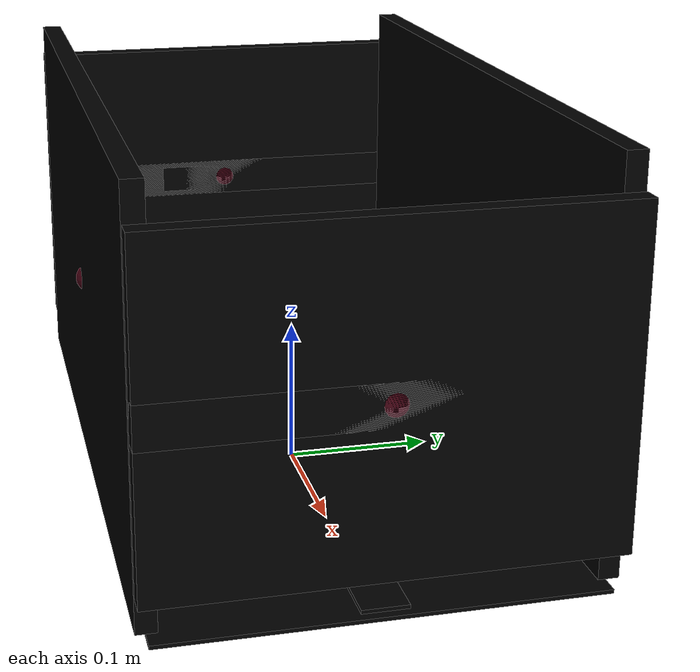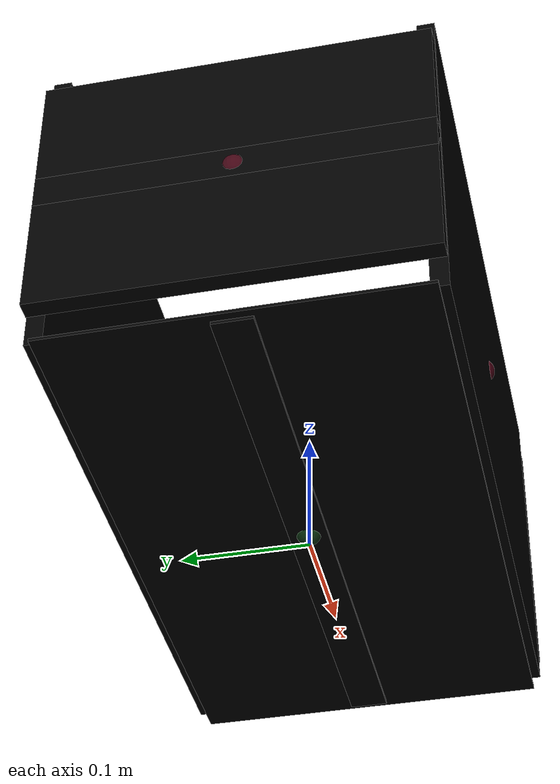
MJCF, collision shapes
<mujoco model="box_ivar_0666">
  <custom>
    <numeric data="0.546077 0.234584 0.006332 0.707105 -0.00609 0.707057 0.006091" name="0_part0_initpos" />
    <numeric data="0.056708 0.243404 0.007289 0.012519 0.0 0.0 -0.999922" name="4_part4_initpos" />
    <numeric data="-0.445141 0.216783 0.006384 0.70606 0.037054 -0.706211 0.037046" name="3_part3_initpos" />
    <numeric data="-0.244854 -0.142557 0.006949 -0.025276 -0.025276 0.706655 0.706655" name="2_part2_initpos" />
    <numeric data="0.384367 -0.146051 0.007052 0.706879 -0.706879 0.017939 -0.017939" name="1_part1_initpos" />
  </custom>
  <asset>
    <mesh file="box_ivar_0666/0.stl" name="part0" scale="0.0005 0.0005 0.0005" />
    <mesh file="box_ivar_0666/4.stl" name="part4" scale="0.0005 0.0005 0.0005" />
    <mesh file="box_ivar_0666/3.stl" name="part3" scale="0.0005 0.0005 0.0005" />
    <mesh file="box_ivar_0666/2.stl" name="part2" scale="0.0005 0.0005 0.0005" />
    <mesh file="box_ivar_0666/1.stl" name="part1" scale="0.0005 0.0005 0.0005" />
  </asset>
  <worldbody><body name="combined_body" pos="0.25 0 0.14492582702636718" quat="1 0 0 0"><geom conaffinity="0" contype="0" density="0" mesh="part0" name="0_part0_mesh" pos="0.0 1e-10 0.0" rgba="0.82 0.71 0.55 1" type="mesh" quat="1 0 0 0" />
      <geom density="50" name="noviz_collision_0_part0_0" pos="0.0 1e-10 0.0" quat="1 0 0 0" rgba="0 0 0 0" size="0.0066657700000000005 0.14614025 0.10875" solref="0.001 1" type="box" />
      <geom density="50" name="noviz_collision_0_part0_1" pos="0.0 1e-10 0.0" quat="1 0 0 0" rgba="0 0 0 0" size="0.0066657700000000005 0.14614025 0.01375" solref="0.001 1" type="box" />
      <geom density="50" name="noviz_collision_0_part0_2" pos="0.0 1e-10 0.0" quat="1 0 0 0" rgba="0 0 0 0" size="0.00603421 0.0525 0.01" solref="0.001 1" type="box" />
      <geom density="50" name="noviz_collision_0_part0_3" pos="0.0 1e-10 0.0" quat="1 0 0 0" rgba="0 0 0 0" size="0.00603421 0.0525 0.01" solref="0.001 1" type="box" />
    <site name="0_part0_horizontal_radius_site" pos="0.0 1e-10 0.0" quat="1 0 0 0" rgba="0 0 0 0" size="0.0005" />
      <site name="0_part0_top_site" pos="0.0 1e-10 0.0" quat="1 0 0 0" rgba="0 0 0 0" size="0.0005" />
      <site name="0_part0_bottom_site" pos="0.0 1e-10 0.0" quat="1 0 0 0" rgba="0 0 0 0" size="0.0005" />
      <site name="0_part0_corner_site8" pos="0.0 1e-10 0.0" quat="1 0 0 0" rgba="0 0 0 0" size="0.01" />
      <site name="0_part0_corner_site7" pos="0.0 1e-10 0.0" quat="1 0 0 0" rgba="0 0 0 0" size="0.01" />
      <site name="0_part0_corner_site6" pos="0.0 1e-10 0.0" quat="1 0 0 0" rgba="0 0 0 0" size="0.01" />
      <site name="0_part0_corner_site5" pos="0.0 1e-10 0.0" quat="1 0 0 0" rgba="0 0 0 0" size="0.01" />
      <site name="0_part0_corner_site4" pos="0.0 1e-10 0.0" quat="1 0 0 0" rgba="0 0 0 0" size="0.01" />
      <site name="0_part0_corner_site3" pos="0.0 1e-10 0.0" quat="1 0 0 0" rgba="0 0 0 0" size="0.01" />
      <site name="0_part0_corner_site2" pos="0.0 1e-10 0.0" quat="1 0 0 0" rgba="0 0 0 0" size="0.01" />
      <site name="0_part0_corner_site1" pos="0.0 1e-10 0.0" quat="1 0 0 0" rgba="0 0 0 0" size="0.01" />
      <site name="short-long,0,conn_site4" pos="0.0 1e-10 0.0" quat="1 0 0 0" rgba="0.9019 0.0980 0.2941 0.3" size="0.01" />
      <site name="short-long,0,conn_site3" pos="0.0 1e-10 0.0" quat="1 0 0 0" rgba="0.9019 0.0980 0.2941 0.3" size="0.01" />
      <site name="short-bottom,0,conn_site2" pos="0.0 1e-10 0.0" quat="1 0 0 0" rgba="0.2352 0.7058 0.2941 0.3" size="0.01" />
      <geom conaffinity="0" contype="0" density="0" mesh="part4" name="4_part4_mesh" pos="-0.25387612340000004 2.265e-08 -0.13619582725" rgba="0.82 0.71 0.55 1" type="mesh" quat="1 0 0 0" />
      <geom density="50" name="noviz_collision_4_part4_0" pos="-0.25387612340000004 2.265e-08 -0.13619582725" quat="1 0 0 0" rgba="0 0 0 0" size="0.25387615 0.1397902 0.00125" solref="0.001 1" type="box" />
      <geom density="50" name="noviz_collision_4_part4_1" pos="-0.25387612340000004 2.265e-08 -0.13619582725" quat="1 0 0 0" rgba="0 0 0 0" size="0.2475 0.015 0.00375" solref="0.001 1" type="box" />
      <geom density="50" name="noviz_collision_4_part4_2" pos="-0.25387612340000004 2.265e-08 -0.13619582725" quat="1 0 0 0" rgba="0 0 0 0" size="0.2475 0.015 0.00375" solref="0.001 1" type="box" />
    <site name="4_part4_horizontal_radius_site" pos="-0.25387612340000004 2.265e-08 -0.13619582725" quat="1 0 0 0" rgba="0 0 0 0" size="0.0005" />
      <site name="4_part4_top_site" pos="-0.25387612340000004 2.265e-08 -0.13619582725" quat="1 0 0 0" rgba="0 0 0 0" size="0.0005" />
      <site name="4_part4_bottom_site" pos="-0.25387612340000004 2.265e-08 -0.13619582725" quat="1 0 0 0" rgba="0 0 0 0" size="0.0005" />
      <site name="4_part4_corner_site8" pos="-0.25387612340000004 2.265e-08 -0.13619582725" quat="1 0 0 0" rgba="0 0 0 0" size="0.01" />
      <site name="4_part4_corner_site7" pos="-0.25387612340000004 2.265e-08 -0.13619582725" quat="1 0 0 0" rgba="0 0 0 0" size="0.01" />
      <site name="4_part4_corner_site6" pos="-0.25387612340000004 2.265e-08 -0.13619582725" quat="1 0 0 0" rgba="0 0 0 0" size="0.01" />
      <site name="4_part4_corner_site5" pos="-0.25387612340000004 2.265e-08 -0.13619582725" quat="1 0 0 0" rgba="0 0 0 0" size="0.01" />
      <site name="4_part4_corner_site4" pos="-0.25387612340000004 2.265e-08 -0.13619582725" quat="1 0 0 0" rgba="0 0 0 0" size="0.01" />
      <site name="4_part4_corner_site3" pos="-0.25387612340000004 2.265e-08 -0.13619582725" quat="1 0 0 0" rgba="0 0 0 0" size="0.01" />
      <site name="4_part4_corner_site2" pos="-0.25387612340000004 2.265e-08 -0.13619582725" quat="1 0 0 0" rgba="0 0 0 0" size="0.01" />
      <site name="4_part4_corner_site1" pos="-0.25387612340000004 2.265e-08 -0.13619582725" quat="1 0 0 0" rgba="0 0 0 0" size="0.01" />
      <site name="bottom-short,0,conn_site2" pos="-0.25387612340000004 2.265e-08 -0.13619582725" quat="1 0 0 0" rgba="0.2352 0.7058 0.2941 0.3" size="0.01" />
      <site name="bottom-short,0,conn_site1" pos="-0.25387612340000004 2.265e-08 -0.13619582725" quat="1 0 0 0" rgba="0.2352 0.7058 0.2941 0.3" size="0.01" />
      <geom conaffinity="0" contype="0" density="0" mesh="part3" name="3_part3_mesh" pos="-0.5077522468000001 1e-10 0.0" rgba="0.82 0.71 0.55 1" type="mesh" quat="1 0 0 0" />
      <geom density="50" name="noviz_collision_3_part3_0" pos="-0.5077522468000001 1e-10 0.0" quat="1 0 0 0" rgba="0 0 0 0" size="0.0066657700000000005 0.14614025 0.10875" solref="0.001 1" type="box" />
      <geom density="50" name="noviz_collision_3_part3_1" pos="-0.5077522468000001 1e-10 0.0" quat="1 0 0 0" rgba="0 0 0 0" size="0.0066657700000000005 0.14614025 0.01375" solref="0.001 1" type="box" />
      <geom density="50" name="noviz_collision_3_part3_2" pos="-0.5077522468000001 1e-10 0.0" quat="1 0 0 0" rgba="0 0 0 0" size="0.0066657700000000005 0.0525 0.01" solref="0.001 1" type="box" />
      <geom density="50" name="noviz_collision_3_part3_3" pos="-0.5077522468000001 1e-10 0.0" quat="1 0 0 0" rgba="0 0 0 0" size="0.0066657700000000005 0.0525 0.01" solref="0.001 1" type="box" />
    <site name="3_part3_horizontal_radius_site" pos="-0.5077522468000001 1e-10 0.0" quat="1 0 0 0" rgba="0 0 0 0" size="0.0005" />
      <site name="3_part3_top_site" pos="-0.5077522468000001 1e-10 0.0" quat="1 0 0 0" rgba="0 0 0 0" size="0.0005" />
      <site name="3_part3_bottom_site" pos="-0.5077522468000001 1e-10 0.0" quat="1 0 0 0" rgba="0 0 0 0" size="0.0005" />
      <site name="3_part3_corner_site8" pos="-0.5077522468000001 1e-10 0.0" quat="1 0 0 0" rgba="0 0 0 0" size="0.01" />
      <site name="3_part3_corner_site7" pos="-0.5077522468000001 1e-10 0.0" quat="1 0 0 0" rgba="0 0 0 0" size="0.01" />
      <site name="3_part3_corner_site6" pos="-0.5077522468000001 1e-10 0.0" quat="1 0 0 0" rgba="0 0 0 0" size="0.01" />
      <site name="3_part3_corner_site5" pos="-0.5077522468000001 1e-10 0.0" quat="1 0 0 0" rgba="0 0 0 0" size="0.01" />
      <site name="3_part3_corner_site4" pos="-0.5077522468000001 1e-10 0.0" quat="1 0 0 0" rgba="0 0 0 0" size="0.01" />
      <site name="3_part3_corner_site3" pos="-0.5077522468000001 1e-10 0.0" quat="1 0 0 0" rgba="0 0 0 0" size="0.01" />
      <site name="3_part3_corner_site2" pos="-0.5077522468000001 1e-10 0.0" quat="1 0 0 0" rgba="0 0 0 0" size="0.01" />
      <site name="3_part3_corner_site1" pos="-0.5077522468000001 1e-10 0.0" quat="1 0 0 0" rgba="0 0 0 0" size="0.01" />
      <site name="short-long,0,conn_site2" pos="-0.5077522468000001 1e-10 0.0" quat="1 0 0 0" rgba="0.9019 0.0980 0.2941 0.3" size="0.01" />
      <site name="short-long,0,conn_site1" pos="-0.5077522468000001 1e-10 0.0" quat="1 0 0 0" rgba="0.9019 0.0980 0.2941 0.3" size="0.01" />
      <site name="short-bottom,0,conn_site1" pos="-0.5077522468000001 1e-10 0.0" quat="1 0 0 0" rgba="0.2352 0.7058 0.2941 0.3" size="0.01" />
      <geom conaffinity="0" contype="0" density="0" mesh="part2" name="2_part2_mesh" pos="-0.25387612515 0.13979021084999999 0.0" rgba="0.82 0.71 0.55 1" type="mesh" quat="1 0 0 0" />
      <geom density="50" name="noviz_collision_2_part2_0" pos="-0.25387612515 0.13979021084999999 0.0" quat="1 0 0 0" rgba="0 0 0 0" size="0.245 0.006664565 0.1325" solref="0.001 1" type="box" />
    <site name="2_part2_horizontal_radius_site" pos="-0.25387612515 0.13979021084999999 0.0" quat="1 0 0 0" rgba="0 0 0 0" size="0.0005" />
      <site name="2_part2_top_site" pos="-0.25387612515 0.13979021084999999 0.0" quat="1 0 0 0" rgba="0 0 0 0" size="0.0005" />
      <site name="2_part2_bottom_site" pos="-0.25387612515 0.13979021084999999 0.0" quat="1 0 0 0" rgba="0 0 0 0" size="0.0005" />
      <site name="2_part2_corner_site8" pos="-0.25387612515 0.13979021084999999 0.0" quat="1 0 0 0" rgba="0 0 0 0" size="0.01" />
      <site name="2_part2_corner_site7" pos="-0.25387612515 0.13979021084999999 0.0" quat="1 0 0 0" rgba="0 0 0 0" size="0.01" />
      <site name="2_part2_corner_site6" pos="-0.25387612515 0.13979021084999999 0.0" quat="1 0 0 0" rgba="0 0 0 0" size="0.01" />
      <site name="2_part2_corner_site5" pos="-0.25387612515 0.13979021084999999 0.0" quat="1 0 0 0" rgba="0 0 0 0" size="0.01" />
      <site name="2_part2_corner_site4" pos="-0.25387612515 0.13979021084999999 0.0" quat="1 0 0 0" rgba="0 0 0 0" size="0.01" />
      <site name="2_part2_corner_site3" pos="-0.25387612515 0.13979021084999999 0.0" quat="1 0 0 0" rgba="0 0 0 0" size="0.01" />
      <site name="2_part2_corner_site2" pos="-0.25387612515 0.13979021084999999 0.0" quat="1 0 0 0" rgba="0 0 0 0" size="0.01" />
      <site name="2_part2_corner_site1" pos="-0.25387612515 0.13979021084999999 0.0" quat="1 0 0 0" rgba="0 0 0 0" size="0.01" />
      <site name="long-short,0,conn_site3" pos="-0.25387612515 0.13979021084999999 0.0" quat="1 0 0 0" rgba="0.9019 0.0980 0.2941 0.3" size="0.01" />
      <site name="long-short,0,conn_site1" pos="-0.25387612515 0.13979021084999999 0.0" quat="1 0 0 0" rgba="0.9019 0.0980 0.2941 0.3" size="0.01" />
      <geom conaffinity="0" contype="0" density="0" mesh="part1" name="1_part1_mesh" pos="-0.25387612515 -0.13979020855 0.0" rgba="0.82 0.71 0.55 1" type="mesh" quat="1 0 0 0" />
      <geom density="50" name="noviz_collision_1_part1_0" pos="-0.25387612515 -0.13979020855 0.0" quat="1 0 0 0" rgba="0 0 0 0" size="0.245 0.006664565 0.1325" solref="0.001 1" type="box" />
    <site name="1_part1_horizontal_radius_site" pos="-0.25387612515 -0.13979020855 0.0" quat="1 0 0 0" rgba="0 0 0 0" size="0.0005" />
      <site name="1_part1_top_site" pos="-0.25387612515 -0.13979020855 0.0" quat="1 0 0 0" rgba="0 0 0 0" size="0.0005" />
      <site name="1_part1_bottom_site" pos="-0.25387612515 -0.13979020855 0.0" quat="1 0 0 0" rgba="0 0 0 0" size="0.0005" />
      <site name="1_part1_corner_site8" pos="-0.25387612515 -0.13979020855 0.0" quat="1 0 0 0" rgba="0 0 0 0" size="0.01" />
      <site name="1_part1_corner_site7" pos="-0.25387612515 -0.13979020855 0.0" quat="1 0 0 0" rgba="0 0 0 0" size="0.01" />
      <site name="1_part1_corner_site6" pos="-0.25387612515 -0.13979020855 0.0" quat="1 0 0 0" rgba="0 0 0 0" size="0.01" />
      <site name="1_part1_corner_site5" pos="-0.25387612515 -0.13979020855 0.0" quat="1 0 0 0" rgba="0 0 0 0" size="0.01" />
      <site name="1_part1_corner_site4" pos="-0.25387612515 -0.13979020855 0.0" quat="1 0 0 0" rgba="0 0 0 0" size="0.01" />
      <site name="1_part1_corner_site3" pos="-0.25387612515 -0.13979020855 0.0" quat="1 0 0 0" rgba="0 0 0 0" size="0.01" />
      <site name="1_part1_corner_site2" pos="-0.25387612515 -0.13979020855 0.0" quat="1 0 0 0" rgba="0 0 0 0" size="0.01" />
      <site name="1_part1_corner_site1" pos="-0.25387612515 -0.13979020855 0.0" quat="1 0 0 0" rgba="0 0 0 0" size="0.01" />
      <site name="long-short,0,conn_site4" pos="-0.25387612515 -0.13979020855 0.0" quat="1 0 0 0" rgba="0.9019 0.0980 0.2941 0.3" size="0.01" />
      <site name="long-short,0,conn_site2" pos="-0.25387612515 -0.13979020855 0.0" quat="1 0 0 0" rgba="0.9019 0.0980 0.2941 0.3" size="0.01" />
      </body></worldbody><actuator />
  <sensor />
  <contact />
  <default />
</mujoco>
